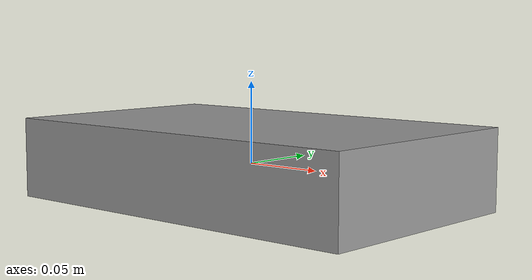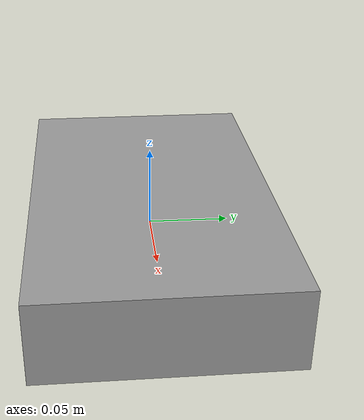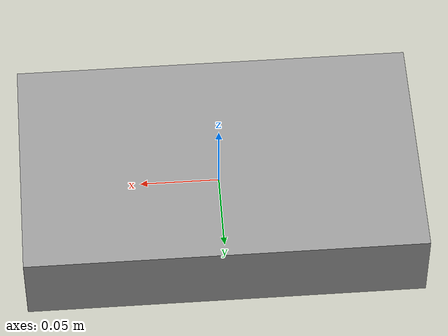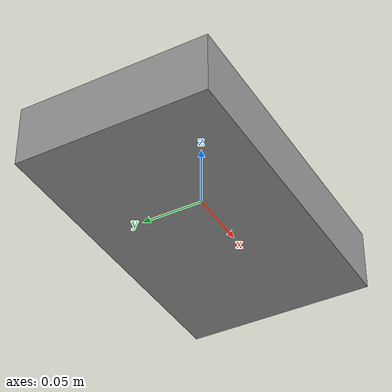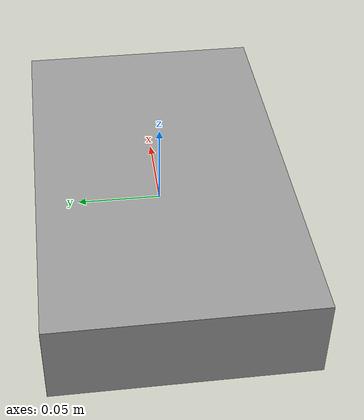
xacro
<?xml version="1.0"?>
<robot name="self_balancer" xmlns:xacro="http://www.ros.org/wiki/xacro">
  <xacro:property name="wheel_radius" value="0.035"/>
  <xacro:property name="wheel_base" value="0.14"/>

  <link name="base_link">
    <inertial>
      <mass value="2.0"/>
      <origin xyz="0 0 0" rpy="0 0 0"/>
      <inertia ixx="0.03" iyy="0.03" izz="0.03"/>
    </inertial>
    <visual>
      <geometry>
        <box size="0.25 0.15 0.05"/>
      </geometry>
      <material name="grey"/>
    </visual>
  </link>

  <link name="wheel_left"/>
  <link name="wheel_right"/>

  <joint name="wheel_left_joint" type="continuous">
    <parent link="base_link"/>
    <child link="wheel_left"/>
    <origin xyz="0 ${wheel_base/2} ${-wheel_radius}" rpy="0 0 0"/>
    <axis xyz="0 1 0"/>
  </joint>

  <joint name="wheel_right_joint" type="continuous">
    <parent link="base_link"/>
    <child link="wheel_right"/>
    <origin xyz="0 ${-wheel_base/2} ${-wheel_radius}" rpy="0 0 0"/>
    <axis xyz="0 1 0"/>
  </joint>

  <link name="imu_link"/>
  <joint name="imu_joint" type="fixed">
    <parent link="base_link"/>
    <child link="imu_link"/>
    <origin xyz="0 0 0.025" rpy="0 0 0"/>
  </joint>

  <gazebo reference="base_link">
    <material>Gazebo/Grey</material>
  </gazebo>
</robot>
